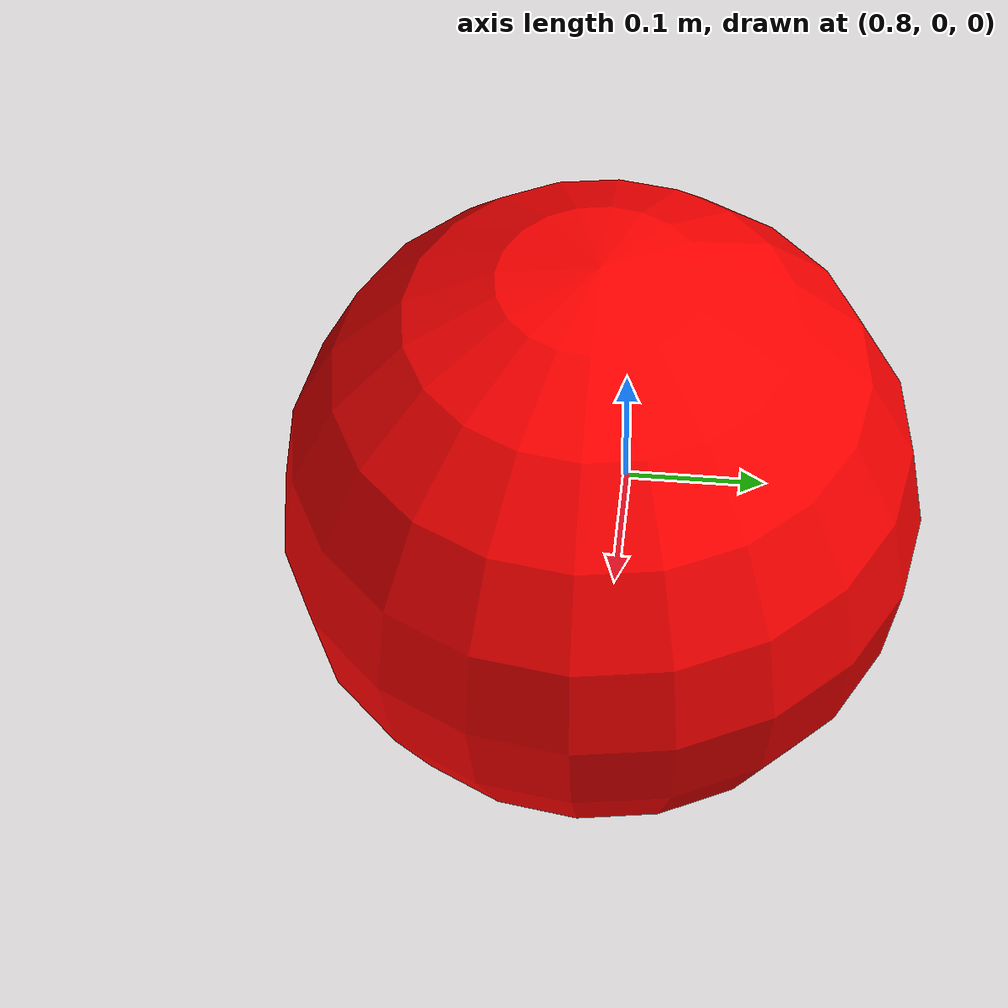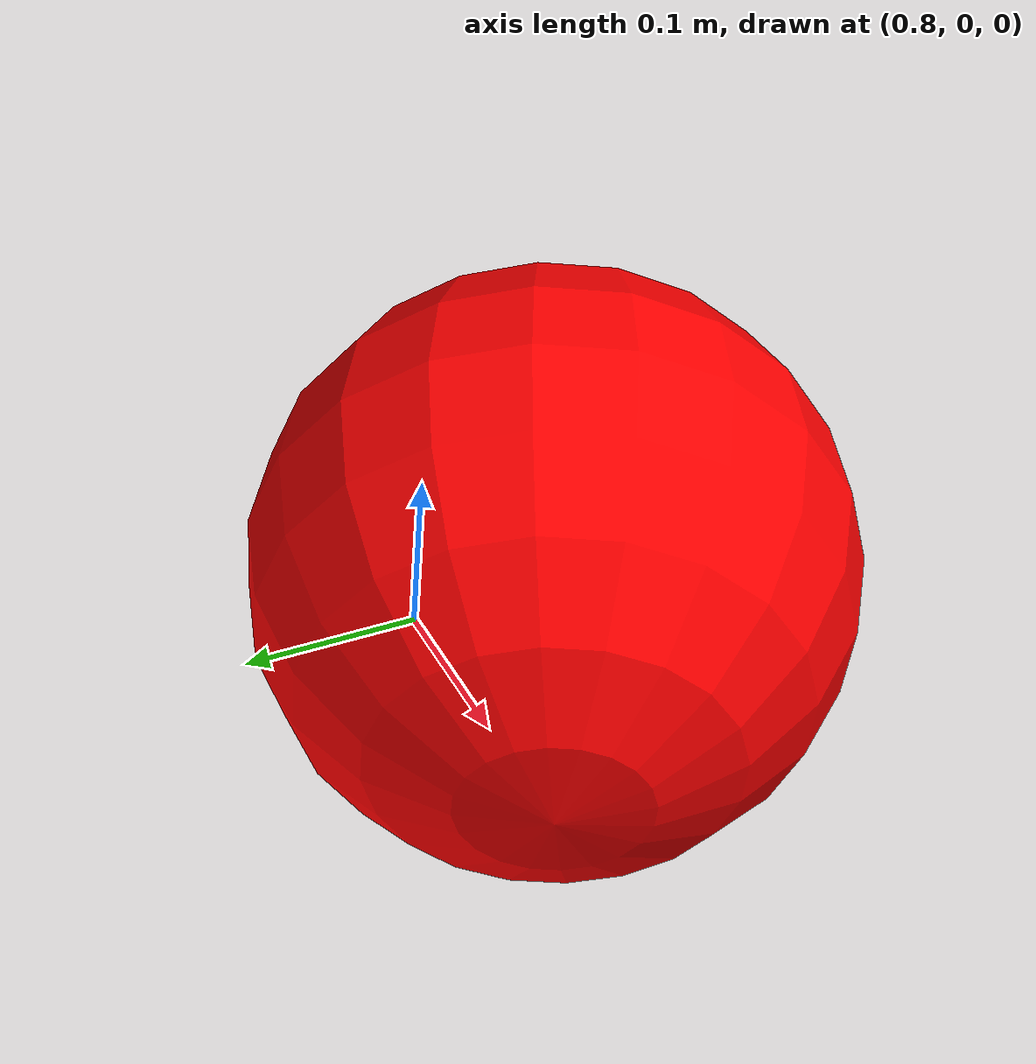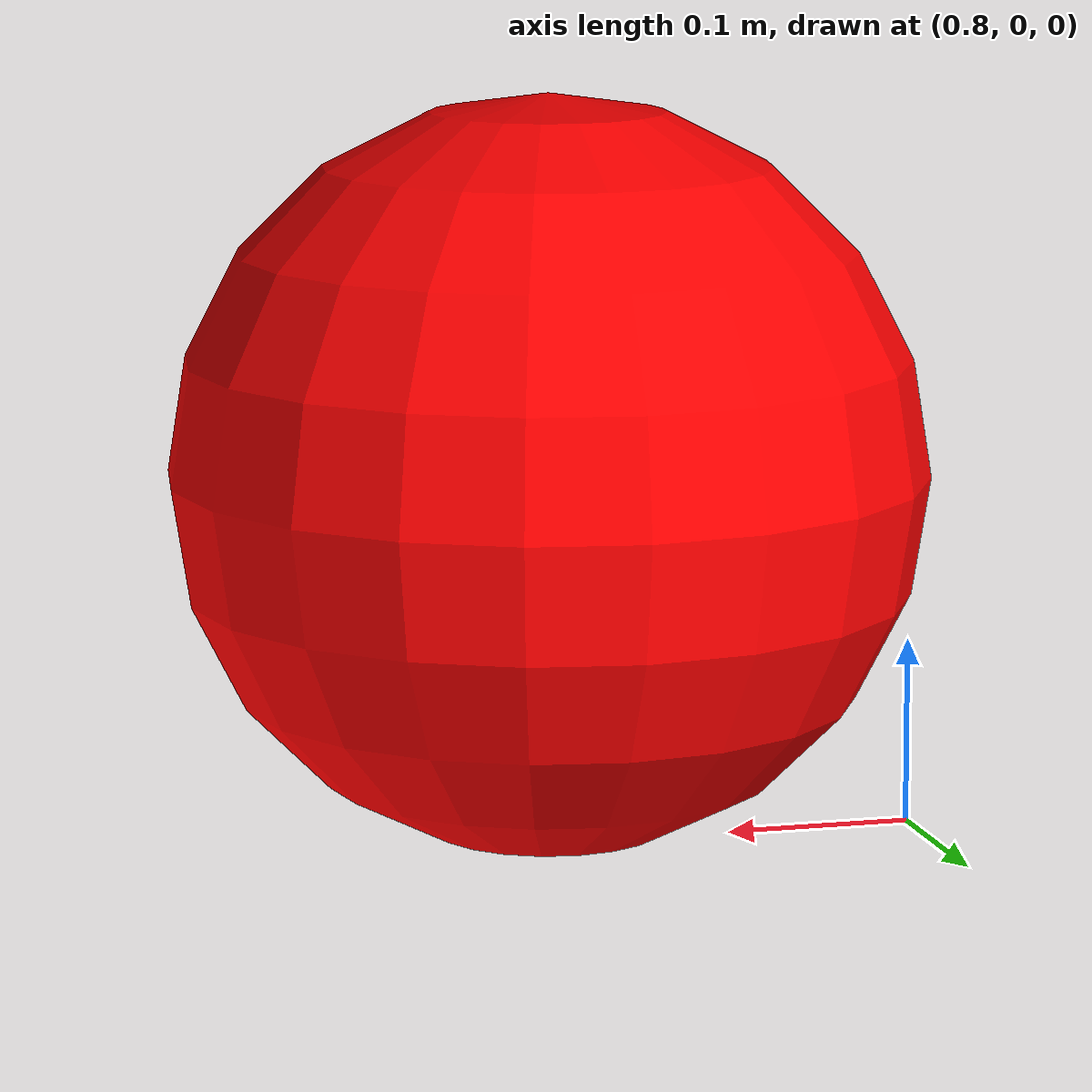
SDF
<?xml version="1.0"?>
<sdf version="1.6">
  <model name="sim_ball">
    <pose>1 0 0.2 0 0 0</pose>
    <link name="link">
      <inertial>
        <mass>0.2</mass>
        <inertia>
          <ixx>0.0032</ixx><iyy>0.0032</iyy><izz>0.0032</izz>
          <ixy>0</ixy><ixz>0</ixz><iyz>0</iyz>
        </inertia>
      </inertial>
      <collision name="collision">
        <geometry><sphere><radius>0.2</radius></sphere></geometry>
      </collision>
      <visual name="visual">
        <geometry><sphere><radius>0.2</radius></sphere></geometry>
        <material>
          <ambient>1 0 0 1</ambient>
          <diffuse>1 0 0 1</diffuse>
        </material>
      </visual>
    </link>

    <!-- Lets us move the ball by publishing geometry_msgs/Twist -->
    <plugin filename="libignition-gazebo-velocity-control-system.so"
            name="ignition::gazebo::systems::VelocityControl">
      <topic>/model/sim_ball/cmd_vel</topic>
    </plugin>

    <!-- Publishes ball position/velocity as an Odometry message -->
    <plugin filename="libignition-gazebo-odometry-publisher-system.so"
            name="ignition::gazebo::systems::OdometryPublisher">
      <odom_topic>/model/sim_ball/odometry</odom_topic>
      <odom_frame>sim_ball/odom</odom_frame>
      <robot_base_frame>sim_ball</robot_base_frame>
      <odom_publish_frequency>20</odom_publish_frequency>
    </plugin>
  </model>
</sdf>
